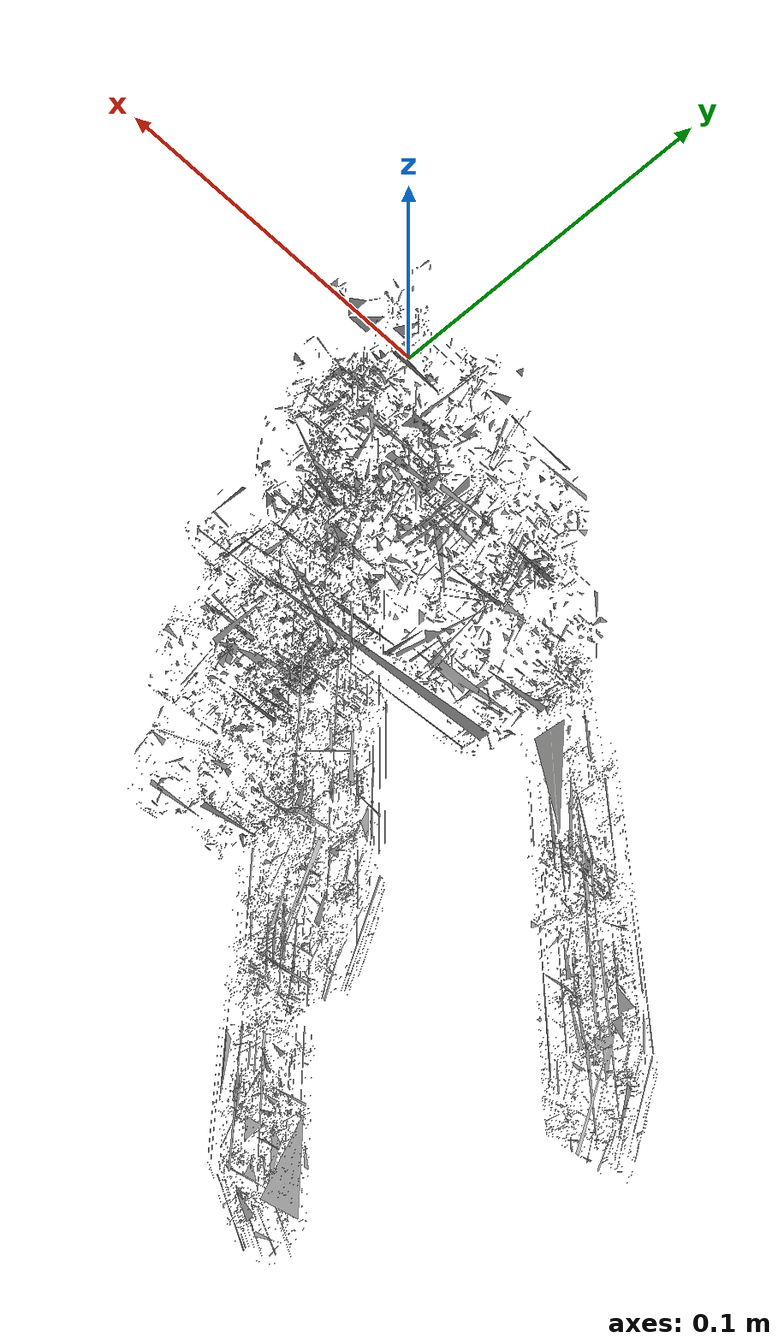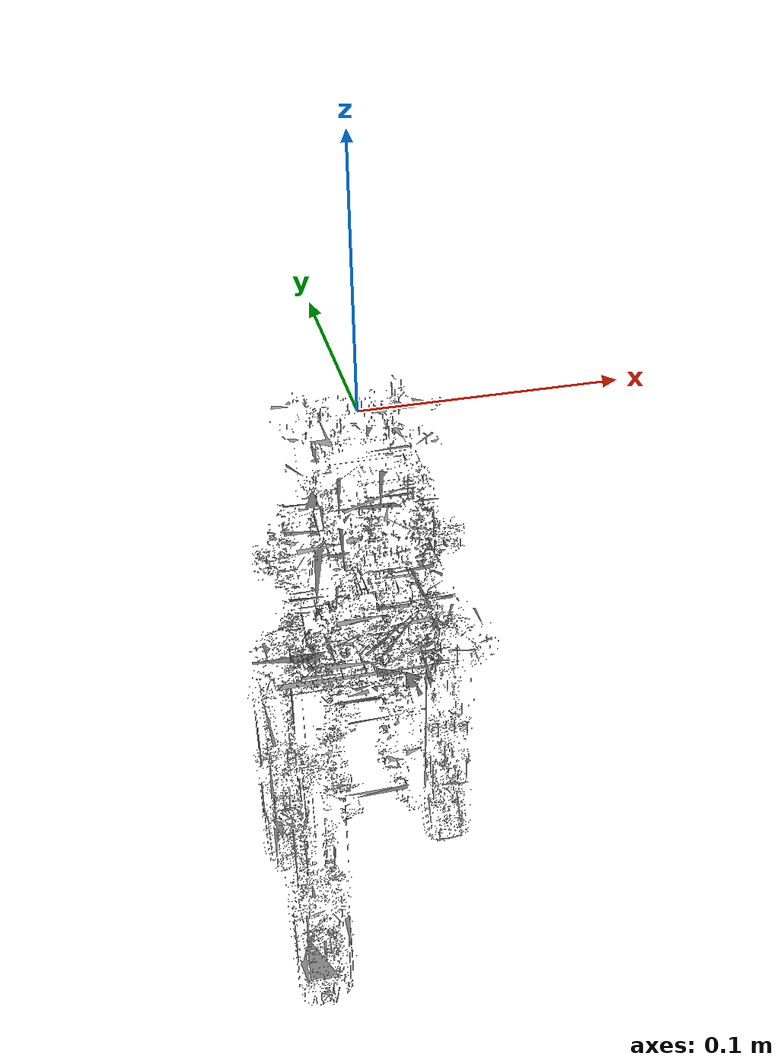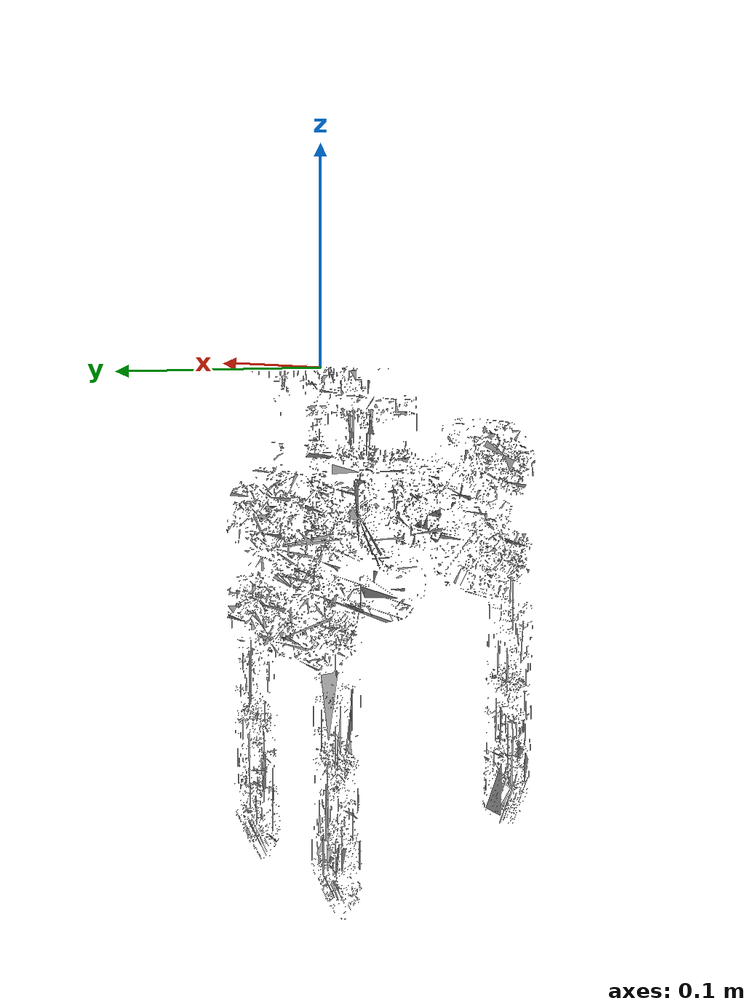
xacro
<?xml version="1.0"?>
<!-- Wrapper URDF that calls the aristo ros2_control macro with mock hardware enabled -->
<robot name="aristo_hand" xmlns:xacro="http://www.ros.org/wiki/xacro">

  <!-- Root and hand connector -->
  <link name="base_link"/>
  <link name="end_effector"/>
  <joint name="base_link_to_end_effector" type="fixed">
    <parent link="base_link"/>
    <child link="end_effector"/>
    <origin xyz="0 0 0" rpy="0 0 0"/>
  </joint>

  <!-- Include the full robot description and the ros2_control definition -->
  <xacro:include filename="$(find whole_body_description)/urdf/xacro/aristo_description.xacro"/>
  <xacro:include filename="$(find whole_body_description)/urdf/ros2_control/aristo.ros2_control.xacro"/>

  <!-- Instantiate geometry/tree and ros2_control with mock hardware enabled -->
  <xacro:aristo_description
    prefix=""/>
  <joint name="connector_to_hand_mount" type="fixed">
    <origin xyz="0 0 0" rpy="0 1.57 1.5708"/>
    <parent link="end_effector"/>
    <child link="hand_mount"/>
  </joint>
  <xacro:aristo_ros2_control name="aristo_mock" fake_hardware="true"/>

</robot>

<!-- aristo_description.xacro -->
<robot xmlns:xacro="http://www.ros.org/wiki/xacro">

  <xacro:macro name="aristo_description" params="prefix:='aristo_'">

    <!-- Create hand_mount link as intermediate frame -->
    <link name="${prefix}hand_mount">
    </link>

    <!-- Rotate hand_base 90 degrees around Z to point in +X direction -->
    <joint name="${prefix}hand_mount_to_base" type="fixed">
      <origin xyz="0 0 0" rpy="0 0 1.5708"/>
      <parent link="${prefix}hand_mount"/>
      <child link="${prefix}hand_base"/>
    </joint>

    <!-- Base link of the hand -->
    <link name="${prefix}hand_base">
      <inertial>
        <origin xyz="1.14624e-05 -0.0735402 0.00270001" rpy="0 0 0"/>
        <mass value="0.739028"/>
        <inertia ixx="0.00120378" ixy="-5.74097e-07" ixz="9.38706e-08" iyy="0.000581026" iyz="0.000226035" izz="0.00122618"/>
      </inertial>
      <visual>
        <origin xyz="1.14624e-05 -0.0735402 0.00270001" rpy="0 0 0"/>
        <geometry>
          <mesh filename="package://whole_body_description/urdf/meshes/hand_base.stl"/>
        </geometry>
        <material name="hand_base_parts_material">
          <color rgba="0.582976 0.583383 0.583584 1"/>
        </material>
      </visual>
      <collision>
        <origin xyz="1.14624e-05 -0.0735402 0.00270001" rpy="0 0 0"/>
        <geometry>
          <mesh filename="package://whole_body_description/urdf/meshes/col_hand_base.stl"/>
        </geometry>
      </collision>
    </link>

    <!-- thumb_distal_tactile: tactile sensor frame 4.73 cm distal of thumb_distal -->
    <link name="${prefix}thumb_distal_tactile" />

    <joint name="${prefix}thumb_distal_to_tactile" type="fixed">
      <!-- translate 0.0473 m (4.73 cm) along the distal link local +x -->
  <!-- orient tactile frame so Z+ points downward while keeping +X forward: rotate pi around X -->
  <!-- keep thumb translation, mirror orientation of index (invert yaw) -->
  <origin xyz="-0.0523 0.01 -0.0025" rpy="0 1.57 1.57"/>
      <parent link="${prefix}thumb_distal"/>
      <child link="${prefix}thumb_distal_tactile"/>
    </joint>

    <!-- thumb_fingertip: fingertip frame at the end of thumb -->
    <link name="${prefix}thumb_fingertip" />

    <joint name="${prefix}thumb_distal_to_fingertip" type="fixed">
      <origin xyz="-0.066 0 0" rpy="0 0 0"/>
      <parent link="${prefix}thumb_distal"/>
      <child link="${prefix}thumb_fingertip"/>
    </joint>

    <!-- thumb_metacarpal -->
    <link name="${prefix}thumb_metacarpal">
      <inertial>
        <origin xyz="5.08388e-05 -0.0186588 0.0228524" rpy="0 0 0"/>
        <mass value="0.120521"/>
        <inertia ixx="2.56992e-05" ixy="5.49331e-08" ixz="-4.85452e-08" iyy="3.3197e-05" iyz="2.03706e-06" izz="2.19064e-05"/>
      </inertial>
      <visual>
        <origin xyz="5.08388e-05 -0.0186588 0.0228524" rpy="-1.5708 0 -2.97318e-15"/>
        <geometry>
          <mesh filename="package://whole_body_description/urdf/meshes/thumb_metacarpal.stl"/>
        </geometry>
        <material name="thumb_metacarpal_parts_material">
          <color rgba="0.55008 0.55008 0.55008 1"/>
        </material>
      </visual>
      <collision>
        <origin xyz="5.08388e-05 -0.0186588 0.0228524" rpy="-1.5708 0 -2.97318e-15"/>
        <geometry>
          <mesh filename="package://whole_body_description/urdf/meshes/col_thumb_metacarpal.stl"/>
        </geometry>
      </collision>
    </link>

    <!-- thumb_actuators -->
    <link name="${prefix}thumb_actuators">
      <inertial>
        <origin xyz="0.00119788 -0.0189545 -0.0225138" rpy="0 0 0"/>
        <mass value="0.240831"/>
        <inertia ixx="4.65934e-05" ixy="4.93309e-06" ixz="-5.99186e-07" iyy="0.00017164" iyz="-1.38804e-06" izz="0.000155026"/>
      </inertial>
      <visual>
        <origin xyz="0.00119788 -0.0189545 -0.0225138" rpy="0 0 -1.5708"/>
        <geometry>
          <mesh filename="package://whole_body_description/urdf/meshes/thumb_actuators.stl"/>
        </geometry>
        <material name="thumb_actuators_parts_material">
          <color rgba="0.545814 0.546439 0.546747 1"/>
        </material>
      </visual>
      <collision>
        <origin xyz="0.00119788 -0.0189545 -0.0225138" rpy="0 0 -1.5708"/>
        <geometry>
          <mesh filename="package://whole_body_description/urdf/meshes/col_thumb_actuators.stl"/>
        </geometry>
      </collision>
    </link>

    <!-- thumb_proximal -->
    <link name="${prefix}thumb_proximal">
      <inertial>
        <origin xyz="0.0275353 8.61887e-05 0.00673205" rpy="0 0 0"/>
        <mass value="0.0306406"/>
        <inertia ixx="1.81672e-06" ixy="-4.24383e-08" ixz="-6.4245e-07" iyy="1.85497e-05" iyz="-2.07897e-09" izz="1.81545e-05"/>
      </inertial>
      <visual>
        <origin xyz="0.0275353 8.61887e-05 0.00673205" rpy="1.5708 -1.5708 0"/>
        <geometry>
          <mesh filename="package://whole_body_description/urdf/meshes/thumb_proximal.stl"/>
        </geometry>
        <material name="thumb_proximal_parts_material">
          <color rgba="0.63463 0.635887 0.633109 1"/>
        </material>
      </visual>
      <collision>
        <origin xyz="0.0275353 8.61887e-05 0.00673205" rpy="1.5708 -1.5708 0"/>
        <geometry>
          <mesh filename="package://whole_body_description/urdf/meshes/col_thumb_proximal.stl"/>
        </geometry>
      </collision>
    </link>

    <!-- thumb_distal -->
    <link name="${prefix}thumb_distal">
      <inertial>
        <origin xyz="-0.0330685 -0.00101822 -0.00300906" rpy="0 0 0"/>
        <mass value="0.0219871"/>
        <inertia ixx="1.21431e-06" ixy="-1.08631e-07" ixz="-2.69395e-09" iyy="9.73575e-06" iyz="2.19882e-10" izz="9.42439e-06"/>
      </inertial>
      <visual>
        <origin xyz="-0.0330685 -0.00101822 -0.00300906" rpy="-1.5708 -1.5708 0"/>
        <geometry>
          <mesh filename="package://whole_body_description/urdf/meshes/thumb_distal.stl"/>
        </geometry>
        <material name="thumb_distal_parts_material">
          <color rgba="0.670015 0.670243 0.668779 1"/>
        </material>
      </visual>
      <collision>
        <origin xyz="-0.0330685 -0.00101822 -0.00300906" rpy="-1.5708 -1.5708 0"/>
        <geometry>
          <mesh filename="package://whole_body_description/urdf/meshes/col_thumb_distal.stl"/>
        </geometry>
      </collision>
    </link>

    <!-- Thumb joints -->

    <joint name="${prefix}joint1" type="revolute">
      <origin xyz="4.56293e-16 -0.044 -0.0285" rpy="1.5708 0 0"/>
      <parent link="${prefix}hand_base"/>
      <child link="${prefix}thumb_metacarpal"/>
      <axis xyz="0 0 1"/>
      <limit effort="10" velocity="10" lower="-0.785398" upper="0.785398"/>
    </joint>

    <joint name="${prefix}joint2" type="revolute">
      <origin xyz="-1.42383e-10 -0.0315 0.025" rpy="-1.5708 1.5708 0"/>
      <parent link="${prefix}thumb_metacarpal"/>
      <child link="${prefix}thumb_actuators"/>
      <axis xyz="0 0 1"/>
      <limit effort="10" velocity="10" lower="-1.5708" upper="1.5708"/>
    </joint>

    <joint name="${prefix}joint3" type="revolute">
      <origin xyz="-0.022 -0.0305 -0.0235" rpy="-1.5708 0 3.14159"/>
      <parent link="${prefix}thumb_actuators"/>
      <child link="${prefix}thumb_proximal"/>
      <axis xyz="0 0 1"/>
      <limit effort="10" velocity="10" lower="-1.0472" upper="1.0472"/>
    </joint>

    <joint name="${prefix}joint4" type="revolute">
      <origin xyz="0.06 0 0.0105" rpy="0 0 3.14159"/>
      <parent link="${prefix}thumb_proximal"/>
      <child link="${prefix}thumb_distal"/>
      <axis xyz="0 0 1"/>
      <limit effort="10" velocity="10" lower="-2.0944" upper="1.0472"/>
    </joint>

    <!-- index_proximal -->
    <link name="${prefix}index_proximal">
      <inertial>
        <origin xyz="0.0275353 -8.61566e-05 0.00673211" rpy="0 0 0"/>
        <mass value="0.0306406"/>
        <inertia ixx="1.81666e-06" ixy="4.24695e-08" ixz="-6.42349e-07" iyy="1.85498e-05" iyz="1.97055e-09" izz="1.81546e-05"/>
      </inertial>
      <visual>
        <origin xyz="0.0275353 -8.61566e-05 0.00673211" rpy="1.5708 -1.5708 0"/>
        <geometry>
          <mesh filename="package://whole_body_description/urdf/meshes/index_proximal.stl"/>
        </geometry>
        <material name="index_proximal_parts_material">
          <color rgba="0.63463 0.635887 0.633109 1"/>
        </material>
      </visual>
      <collision>
        <origin xyz="0.0275353 -8.61566e-05 0.00673211" rpy="1.5708 -1.5708 0"/>
        <geometry>
          <mesh filename="package://whole_body_description/urdf/meshes/col_index_proximal.stl"/>
        </geometry>
      </collision>
    </link>

    <!-- index_distal -->
    <link name="${prefix}index_distal">
      <inertial>
        <origin xyz="-0.0330685 0.00101822 -0.00299094" rpy="0 0 0"/>
        <mass value="0.0219871"/>
        <inertia ixx="1.21431e-06" ixy="1.08631e-07" ixz="2.69395e-09" iyy="9.73575e-06" iyz="2.19882e-10" izz="9.42439e-06"/>
      </inertial>
      <visual>
        <origin xyz="-0.0330685 0.00101822 -0.00299094" rpy="-1.5708 -1.5708 0"/>
        <geometry>
          <mesh filename="package://whole_body_description/urdf/meshes/index_distal.stl"/>
        </geometry>
        <material name="index_distal_parts_material">
          <color rgba="0.670015 0.670243 0.668779 1"/>
        </material>
      </visual>
      <collision>
        <origin xyz="-0.0330685 0.00101822 -0.00299094" rpy="-1.5708 -1.5708 0"/>
        <geometry>
          <mesh filename="package://whole_body_description/urdf/meshes/col_index_distal.stl"/>
        </geometry>
      </collision>
    </link>

    <!-- Index joints -->
    <joint name="${prefix}joint5" type="revolute">
      <origin xyz="0.0305 -0.113 0.0145" rpy="-1.5708 0 -1.5708"/>
      <parent link="${prefix}hand_base"/>
      <child link="${prefix}index_proximal"/>
      <axis xyz="0 0 1"/>
      <limit effort="10" velocity="10" lower="-1.0472" upper="1.0472"/>
    </joint>

    <joint name="${prefix}joint6" type="revolute">
      <origin xyz="0.06 0 0.0105" rpy="0 0 3.14159"/>
      <parent link="${prefix}index_proximal"/>
      <child link="${prefix}index_distal"/>
      <axis xyz="0 0 1"/>
      <limit effort="10" velocity="10" lower="-1.0472" upper="2.0944"/>
    </joint>

    <!-- index_distal_tactile: tactile sensor frame 4.73 cm distal of index_distal -->
    <link name="${prefix}index_distal_tactile" />

    <joint name="${prefix}index_distal_to_tactile" type="fixed">
      <!-- translate 0.0473 m (4.73 cm) along the distal link local +x -->
  <!-- orient tactile frame so Z+ points downward while keeping +X forward: rotate pi around X -->
  <origin xyz="-0.0523 -0.01 -0.0025" rpy="0 -1.57 1.57"/>
      <parent link="${prefix}index_distal"/>
      <child link="${prefix}index_distal_tactile"/>
    </joint>

    <!-- index_fingertip: fingertip frame at the end of index finger -->
    <link name="${prefix}index_fingertip" />

    <joint name="${prefix}index_distal_to_fingertip" type="fixed">
      <origin xyz="-0.066 0 0" rpy="0 0 0"/>
      <parent link="${prefix}index_distal"/>
      <child link="${prefix}index_fingertip"/>
    </joint>

      <!-- Middle joints -->
    <joint name="${prefix}joint7" type="revolute">
      <origin xyz="-0.0305 -0.113 0.0145" rpy="-1.5708 0 -1.5708"/>
      <parent link="${prefix}hand_base"/>
      <child link="${prefix}middle_proximal"/>
      <axis xyz="0 0 1"/>
      <limit effort="10" velocity="10" lower="-1.0472" upper="1.0472"/>
    </joint>

    <joint name="${prefix}joint8" type="revolute">
      <origin xyz="0.06 0 -0.0105" rpy="0 0 -3.14159"/>
      <parent link="${prefix}middle_proximal"/>
      <child link="${prefix}middle_distal"/>
      <axis xyz="0 0 1"/>
      <limit effort="10" velocity="10" lower="-1.0472" upper="2.0944"/>
    </joint>

    <!-- middle_proximal -->
    <link name="${prefix}middle_proximal">
      <inertial>
        <origin xyz="0.0275353 -8.61887e-05 -0.00673205" rpy="0 0 0"/>
        <mass value="0.0306406"/>
        <inertia ixx="1.81672e-06" ixy="4.24383e-08" ixz="6.4245e-07" iyy="1.85497e-05" iyz="-2.07897e-09" izz="1.81545e-05"/>
      </inertial>
      <visual>
        <origin xyz="0.0275353 -8.61887e-05 -0.00673205" rpy="1.5708 -1.5708 0"/>
        <geometry>
          <mesh filename="package://whole_body_description/urdf/meshes/middle_proximal.stl"/>
        </geometry>
        <material name="middle_proximal_parts_material">
          <color rgba="0.63463 0.635887 0.633109 1"/>
        </material>
      </visual>
      <collision>
        <origin xyz="0.0275353 -8.61887e-05 -0.00673205" rpy="1.5708 -1.5708 0"/>
        <geometry>
          <mesh filename="package://whole_body_description/urdf/meshes/col_middle_proximal.stl"/>
        </geometry>
      </collision>
    </link>

    <!-- middle_distal -->
    <link name="${prefix}middle_distal">
      <inertial>
        <origin xyz="-0.0330685 0.00101822 0.00300906" rpy="0 0 0"/>
        <mass value="0.0219871"/>
        <inertia ixx="1.21431e-06" ixy="1.08631e-07" ixz="2.69395e-09" iyy="9.73575e-06" iyz="2.19882e-10" izz="9.42439e-06"/>
      </inertial>
      <visual>
        <origin xyz="-0.0330685 0.00101822 0.00300906" rpy="-1.5708 -1.5708 0"/>
        <geometry>
          <mesh filename="package://whole_body_description/urdf/meshes/middle_distal.stl"/>
        </geometry>
        <material name="middle_distal_parts_material">
          <color rgba="0.670015 0.670243 0.668779 1"/>
        </material>
      </visual>
      <collision>
        <origin xyz="-0.0330685 0.00101822 0.00300906" rpy="-1.5708 -1.5708 0"/>
        <geometry>
          <mesh filename="package://whole_body_description/urdf/meshes/col_middle_distal.stl"/>
        </geometry>
      </collision>
    </link>

    <!-- middle_distal_tactile: tactile sensor frame 4.73 cm distal of middle_distal -->
    <link name="${prefix}middle_distal_tactile" />

    <joint name="${prefix}middle_distal_to_tactile" type="fixed">
      <!-- translate 0.0473 m (4.73 cm) along the distal link local +x -->
  <!-- orient tactile frame so Z+ points downward while keeping +X forward: rotate pi around X -->
  <origin xyz="-0.0523 -0.01 -0.0025" rpy="0 -1.57 1.57"/>
      <parent link="${prefix}middle_distal"/>
      <child link="${prefix}middle_distal_tactile"/>
    </joint>

    <!-- middle_fingertip: fingertip frame at the end of middle finger -->
    <link name="${prefix}middle_fingertip" />

    <joint name="${prefix}middle_distal_to_fingertip" type="fixed">
      <origin xyz="-0.066 0 0" rpy="0 0 0"/>
      <parent link="${prefix}middle_distal"/>
      <child link="${prefix}middle_fingertip"/>
    </joint>

  </xacro:macro>
</robot>
